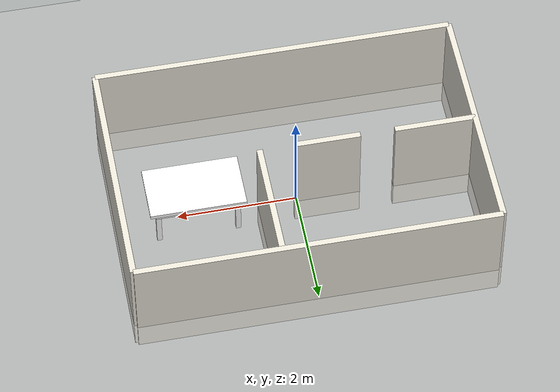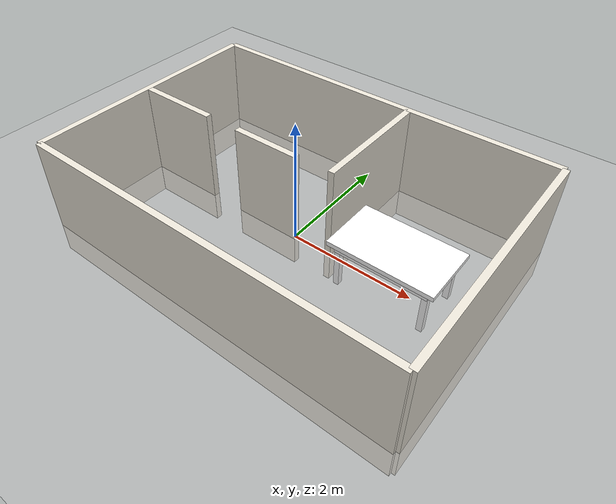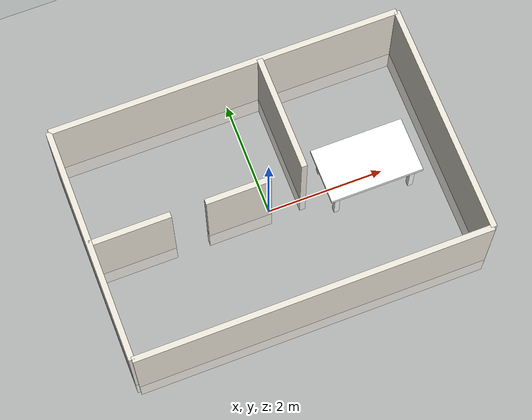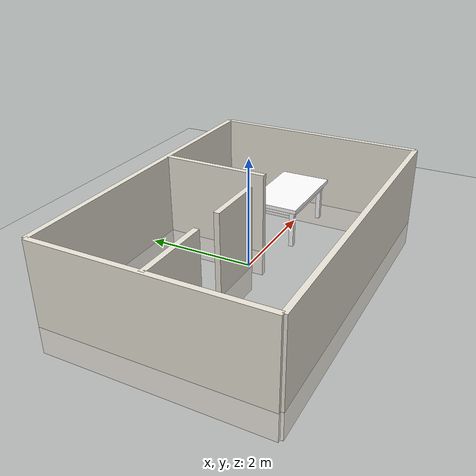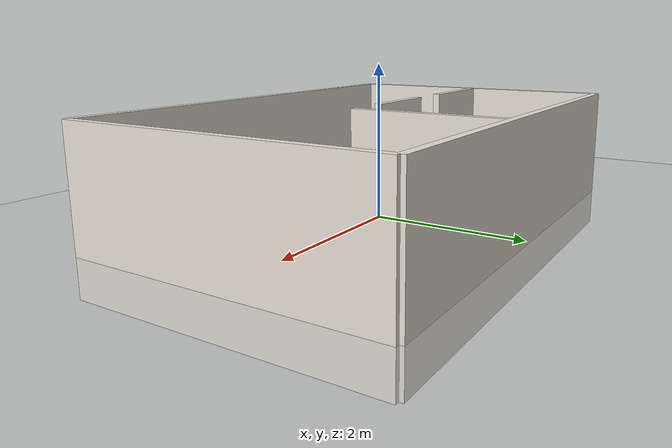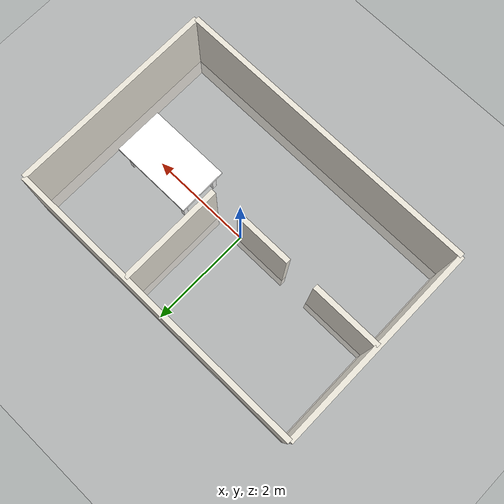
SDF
<sdf version="1.9">
 <world name="house.world">
  <include><uri>https://fuel.gazebosim.org/1.0/OpenRobotics/models/Sun</uri></include>
  <include><uri>https://fuel.gazebosim.org/1.0/OpenRobotics/models/Ground Plane</uri></include>
  <include><uri>model://house</uri><name>house</name></include>
  <include><uri>model://table</uri><name>table</name><pose>1.7 0.0 0 0.0 0.0 0.0</pose></include>
 </world>
</sdf>

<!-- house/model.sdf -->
<sdf version="1.9">
  <model name="house">
    <static>true</static>
    <link name="link">

      <collision name="w">
        <pose>-3.0 0.0 0.5 0 0 0</pose>
        <geometry><box><size>0.1 4.0 2.0</size></box></geometry>
      </collision>
      <visual name="w_visual">
        <pose>-3.0 0.0 0.5 0 0 0</pose>
        <geometry><box><size>0.1 4.0 2.0</size></box></geometry>
        <material>
          <ambient>0.85 0.83 0.78 1</ambient>
          <diffuse>0.92 0.90 0.85 1</diffuse>
        </material>
      </visual>

      <collision name="e">
        <pose>3.0 0.0 0.5 0 0 0</pose>
        <geometry><box><size>0.1 4.0 2.0</size></box></geometry>
      </collision>
      <visual name="e_visual">
        <pose>3.0 0.0 0.5 0 0 0</pose>
        <geometry><box><size>0.1 4.0 2.0</size></box></geometry>
        <material>
          <ambient>0.85 0.83 0.78 1</ambient>
          <diffuse>0.92 0.90 0.85 1</diffuse>
        </material>
      </visual>

      <collision name="n">
        <pose>0.0 2.0 0.5 0 0 0</pose>
        <geometry><box><size>6.0 0.1 2.0</size></box></geometry>
      </collision>
      <visual name="n_visual">
        <pose>0.0 2.0 0.5 0 0 0</pose>
        <geometry><box><size>6.0 0.1 2.0</size></box></geometry>
        <material>
          <ambient>0.85 0.83 0.78 1</ambient>
          <diffuse>0.92 0.90 0.85 1</diffuse>
        </material>
      </visual>

      <collision name="s">
        <pose>0.0 -2.0 0.5 0 0 0</pose>
        <geometry><box><size>6.0 0.1 2.0</size></box></geometry>
      </collision>
      <visual name="s_visual">
        <pose>0.0 -2.0 0.5 0 0 0</pose>
        <geometry><box><size>6.0 0.1 2.0</size></box></geometry>
        <material>
          <ambient>0.85 0.83 0.78 1</ambient>
          <diffuse>0.92 0.90 0.85 1</diffuse>
        </material>
      </visual>

      <collision name="small_e">
        <pose>0.6 1.0 0.5 0 0 0</pose>
        <geometry><box><size>0.1 2.0 2.0</size></box></geometry>
      </collision>
      <visual name="small_e_visual">
        <pose>0.6 1.0 0.5 0 0 0</pose>
        <geometry><box><size>0.1 2.0 2.0</size></box></geometry>
        <material>
          <ambient>0.85 0.83 0.78 1</ambient>
          <diffuse>0.92 0.90 0.85 1</diffuse>
        </material>
      </visual>

      <collision name="door1">
        <pose>-2.325 0.0 0.5 0 0 0</pose>
        <geometry><box><size>1.35 0.1 2.0</size></box></geometry>
      </collision>
      <visual name="door1_visual">
        <pose>-2.325 0.0 0.5 0 0 0</pose>
        <geometry><box><size>1.35 0.1 2.0</size></box></geometry>
        <material>
          <ambient>0.85 0.83 0.78 1</ambient>
          <diffuse>0.92 0.90 0.85 1</diffuse>
        </material>
      </visual>

      <collision name="door2">
        <pose>-0.525 0.0 0.5 0 0 0</pose>
        <geometry><box><size>1.1 0.1 2.0</size></box></geometry>
      </collision>
      <visual name="door2_visual">
        <pose>-0.525 0.0 0.5 0 0 0</pose>
        <geometry><box><size>1.1 0.1 2.0</size></box></geometry>
        <material>
          <ambient>0.85 0.83 0.78 1</ambient>
          <diffuse>0.92 0.90 0.85 1</diffuse>
        </material>
      </visual>

    </link>
  </model>
</sdf>

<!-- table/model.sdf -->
<sdf version="1.9">
  <model name="table">
    <static>true</static>
    <link name="body">

      <collision name="top_collision">
        <pose>0 0 0.75 0 0 0</pose>
        <geometry><box><size>1.60 0.95 0.07</size></box></geometry>
      </collision>
      <visual name="top_visual">
        <pose>0 0 0.75 0 0 0</pose>
        <geometry><box><size>1.60 0.95 0.07</size></box></geometry>
        <material>
          <ambient>1 1 1 1</ambient>
          <diffuse>1 1 1 1</diffuse>
          <specular>0.05 0.05 0.05 1</specular>
          <pbr>
            <metal>
              <albedo_map>materials/textures/wood_albedo.png</albedo_map>
              <normal_map>materials/textures/wood_normal.png</normal_map>
              <roughness_map>materials/textures/wood_roughness.png</roughness_map>
              <metalness>0.0</metalness>
            </metal>
          </pbr>
        </material>
      </visual>

      <collision name="apron_left">
        <pose>0 0.39 0.67 0 0 0</pose>
        <geometry><box><size>1.40 0.065 0.12</size></box></geometry>
      </collision>
      <collision name="apron_right">
        <pose>0 -0.39 0.67 0 0 0</pose>
        <geometry><box><size>1.40 0.065 0.12</size></box></geometry>
      </collision>
      <collision name="apron_front">
        <pose>0.66 0 0.67 0 0 0</pose>
        <geometry><box><size>0.065 0.74 0.12</size></box></geometry>
      </collision>
      <collision name="apron_back">
        <pose>-0.66 0 0.67 0 0 0</pose>
        <geometry><box><size>0.065 0.74 0.12</size></box></geometry>
      </collision>

      <visual name="apron_left_visual">
        <pose>0 0.39 0.67 0 0 0</pose>
        <geometry><box><size>1.40 0.065 0.12</size></box></geometry>
        <material><ambient>1 1 1 1</ambient><diffuse>1 1 1 1</diffuse><specular>0.05 0.05 0.05 1</specular><pbr><metal><albedo_map>materials/textures/wood_albedo.png</albedo_map><normal_map>materials/textures/wood_normal.png</normal_map><roughness_map>materials/textures/wood_roughness.png</roughness_map><metalness>0.0</metalness></metal></pbr></material>
      </visual>
      <visual name="apron_right_visual">
        <pose>0 -0.39 0.67 0 0 0</pose>
        <geometry><box><size>1.40 0.065 0.12</size></box></geometry>
        <material><ambient>1 1 1 1</ambient><diffuse>1 1 1 1</diffuse><specular>0.05 0.05 0.05 1</specular><pbr><metal><albedo_map>materials/textures/wood_albedo.png</albedo_map><normal_map>materials/textures/wood_normal.png</normal_map><roughness_map>materials/textures/wood_roughness.png</roughness_map><metalness>0.0</metalness></metal></pbr></material>
      </visual>
      <visual name="apron_front_visual">
        <pose>0.66 0 0.67 0 0 0</pose>
        <geometry><box><size>0.065 0.74 0.12</size></box></geometry>
        <material><ambient>1 1 1 1</ambient><diffuse>1 1 1 1</diffuse><specular>0.05 0.05 0.05 1</specular><pbr><metal><albedo_map>materials/textures/wood_albedo.png</albedo_map><normal_map>materials/textures/wood_normal.png</normal_map><roughness_map>materials/textures/wood_roughness.png</roughness_map><metalness>0.0</metalness></metal></pbr></material>
      </visual>
      <visual name="apron_back_visual">
        <pose>-0.66 0 0.67 0 0 0</pose>
        <geometry><box><size>0.065 0.74 0.12</size></box></geometry>
        <material><ambient>1 1 1 1</ambient><diffuse>1 1 1 1</diffuse><specular>0.05 0.05 0.05 1</specular><pbr><metal><albedo_map>materials/textures/wood_albedo.png</albedo_map><normal_map>materials/textures/wood_normal.png</normal_map><roughness_map>materials/textures/wood_roughness.png</roughness_map><metalness>0.0</metalness></metal></pbr></material>
      </visual>

      <collision name="leg_fl">
        <pose>0.66 0.36 0.35 0 0 0</pose>
        <geometry><box><size>0.085 0.085 0.71</size></box></geometry>
      </collision>
      <collision name="leg_fr">
        <pose>0.66 -0.36 0.35 0 0 0</pose>
        <geometry><box><size>0.085 0.085 0.71</size></box></geometry>
      </collision>
      <collision name="leg_bl">
        <pose>-0.66 0.36 0.35 0 0 0</pose>
        <geometry><box><size>0.085 0.085 0.71</size></box></geometry>
      </collision>
      <collision name="leg_br">
        <pose>-0.66 -0.36 0.35 0 0 0</pose>
        <geometry><box><size>0.085 0.085 0.71</size></box></geometry>
      </collision>

      <visual name="leg_fl_visual">
        <pose>0.66 0.36 0.35 0 0 0</pose>
        <geometry><box><size>0.085 0.085 0.71</size></box></geometry>
        <material><ambient>1 1 1 1</ambient><diffuse>1 1 1 1</diffuse><specular>0.05 0.05 0.05 1</specular><pbr><metal><albedo_map>materials/textures/wood_albedo.png</albedo_map><normal_map>materials/textures/wood_normal.png</normal_map><roughness_map>materials/textures/wood_roughness.png</roughness_map><metalness>0.0</metalness></metal></pbr></material>
      </visual>
      <visual name="leg_fr_visual">
        <pose>0.66 -0.36 0.35 0 0 0</pose>
        <geometry><box><size>0.085 0.085 0.71</size></box></geometry>
        <material><ambient>1 1 1 1</ambient><diffuse>1 1 1 1</diffuse><specular>0.05 0.05 0.05 1</specular><pbr><metal><albedo_map>materials/textures/wood_albedo.png</albedo_map><normal_map>materials/textures/wood_normal.png</normal_map><roughness_map>materials/textures/wood_roughness.png</roughness_map><metalness>0.0</metalness></metal></pbr></material>
      </visual>
      <visual name="leg_bl_visual">
        <pose>-0.66 0.36 0.35 0 0 0</pose>
        <geometry><box><size>0.085 0.085 0.71</size></box></geometry>
        <material><ambient>1 1 1 1</ambient><diffuse>1 1 1 1</diffuse><specular>0.05 0.05 0.05 1</specular><pbr><metal><albedo_map>materials/textures/wood_albedo.png</albedo_map><normal_map>materials/textures/wood_normal.png</normal_map><roughness_map>materials/textures/wood_roughness.png</roughness_map><metalness>0.0</metalness></metal></pbr></material>
      </visual>
      <visual name="leg_br_visual">
        <pose>-0.66 -0.36 0.35 0 0 0</pose>
        <geometry><box><size>0.085 0.085 0.71</size></box></geometry>
        <material><ambient>1 1 1 1</ambient><diffuse>1 1 1 1</diffuse><specular>0.05 0.05 0.05 1</specular><pbr><metal><albedo_map>materials/textures/wood_albedo.png</albedo_map><normal_map>materials/textures/wood_normal.png</normal_map><roughness_map>materials/textures/wood_roughness.png</roughness_map><metalness>0.0</metalness></metal></pbr></material>
      </visual>

    </link>
  </model>
</sdf>
